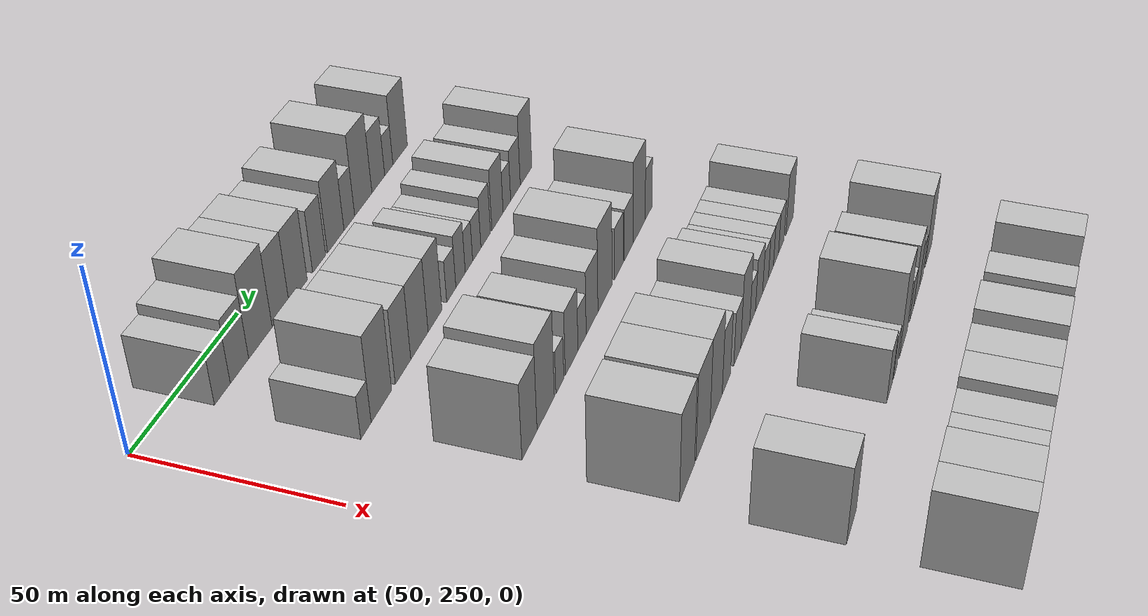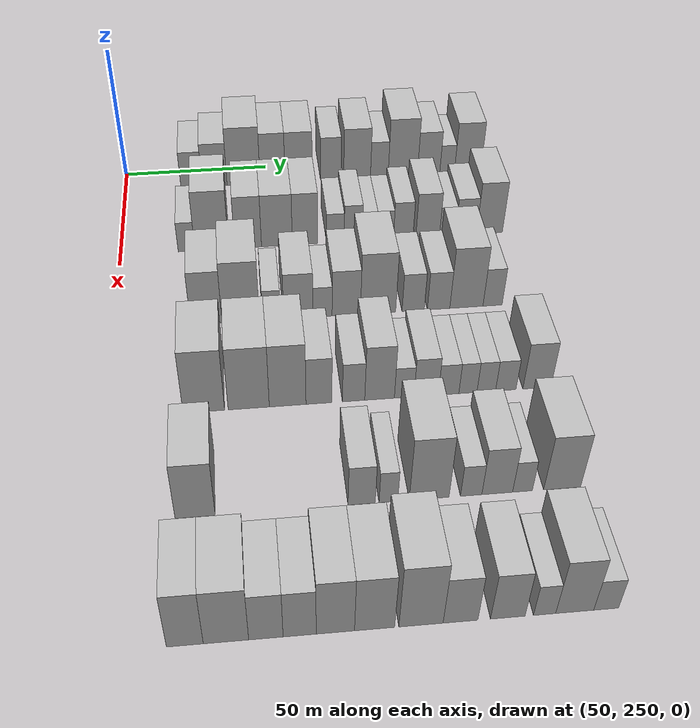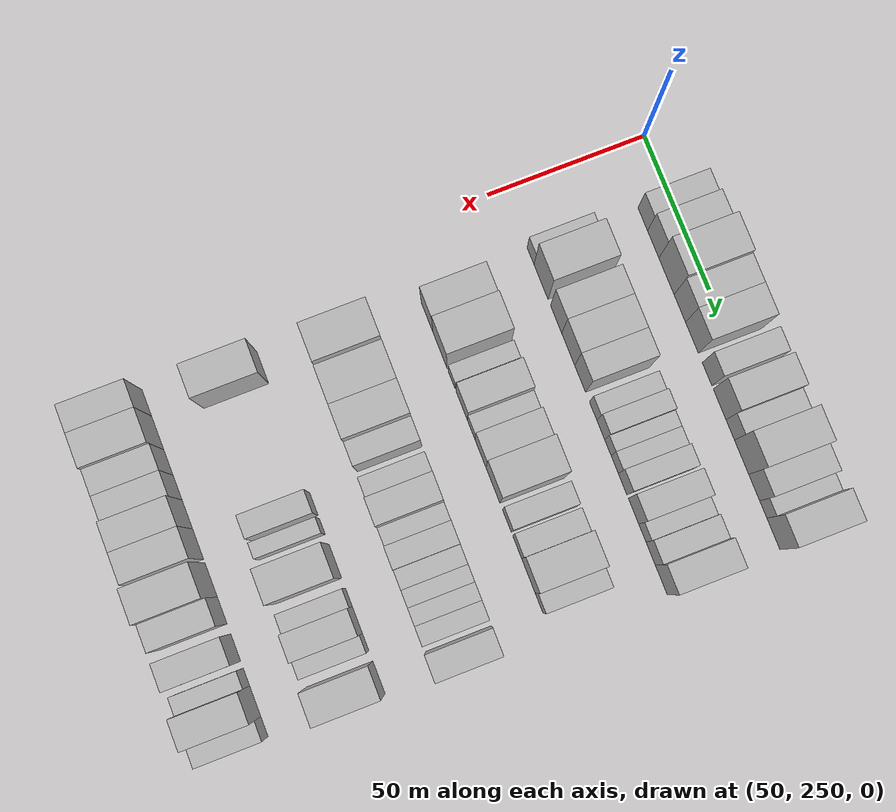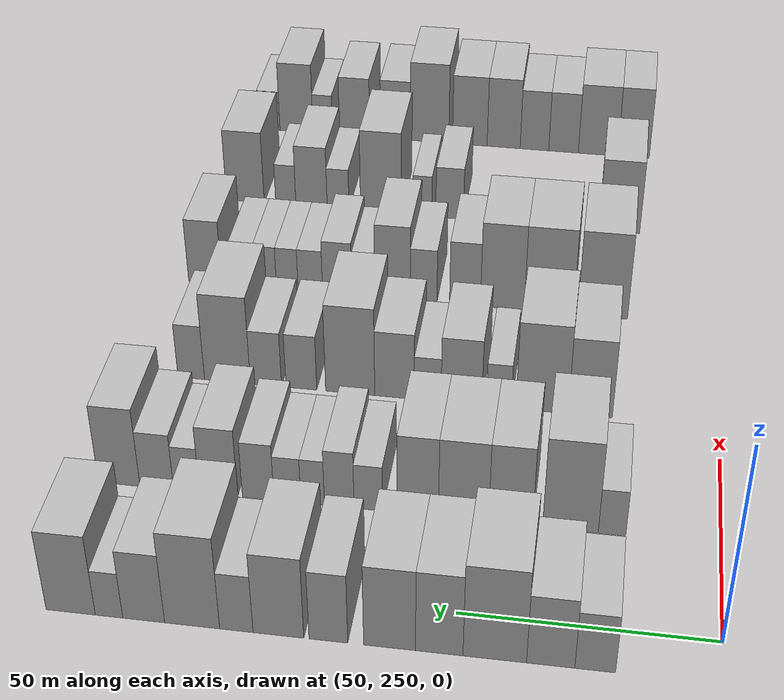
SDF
<sdf version="1.6">
 <world name="default">
  <model name="building_92">
   <static>1</static>
   <pose>50.0000 273.2604 0 0.000000 0.000000 0.000000</pose>
   <link name="link">
    <pose>0 0 7.50 0 0 0</pose>
    <collision name="collision"><geometry><box><size>20.0000 7.4517 15.0000</size></box></geometry></collision>
    <visual name="visual">
     <cast_shadows>0</cast_shadows>
     <geometry><box><size>20.0000 7.4517 15.0000</size></box></geometry>
     <material>
      <script>
       <uri>model://HANNAS_wall/materials/scripts</uri>
       <uri>model://HANNAS_wall/materials/textures</uri>
       <name>vrc/HANNAS_wall</name>
      </script>
     </material>
    </visual>
   </link>
  </model>
  <model name="building_93">
   <static>1</static>
   <pose>50.0000 281.4237 0 0.000000 0.000000 0.000000</pose>
   <link name="link">
    <pose>0 0 9.00 0 0 0</pose>
    <collision name="collision"><geometry><box><size>20.0000 8.8750 18.0000</size></box></geometry></collision>
    <visual name="visual">
     <cast_shadows>0</cast_shadows>
     <geometry><box><size>20.0000 8.8750 18.0000</size></box></geometry>
     <material>
      <script>
       <uri>model://HANNAS_wall/materials/scripts</uri>
       <uri>model://HANNAS_wall/materials/textures</uri>
       <name>vrc/HANNAS_wall</name>
      </script>
     </material>
    </visual>
   </link>
  </model>
  <model name="building_94">
   <static>1</static>
   <pose>50.0000 291.7582 0 0.000000 0.000000 0.000000</pose>
   <link name="link">
    <pose>0 0 12.00 0 0 0</pose>
    <collision name="collision"><geometry><box><size>20.0000 11.7939 24.0000</size></box></geometry></collision>
    <visual name="visual">
     <cast_shadows>0</cast_shadows>
     <geometry><box><size>20.0000 11.7939 24.0000</size></box></geometry>
     <material>
      <script>
       <uri>model://HANNAS_wall/materials/scripts</uri>
       <uri>model://HANNAS_wall/materials/textures</uri>
       <name>vrc/HANNAS_wall</name>
      </script>
     </material>
    </visual>
   </link>
  </model>
  <model name="building_95">
   <static>1</static>
   <pose>50.0000 302.0883 0 0.000000 0.000000 0.000000</pose>
   <link name="link">
    <pose>0 0 10.50 0 0 0</pose>
    <collision name="collision"><geometry><box><size>20.0000 8.8663 21.0000</size></box></geometry></collision>
    <visual name="visual">
     <cast_shadows>0</cast_shadows>
     <geometry><box><size>20.0000 8.8663 21.0000</size></box></geometry>
     <material>
      <script>
       <uri>model://HANNAS_wall/materials/scripts</uri>
       <uri>model://HANNAS_wall/materials/textures</uri>
       <name>vrc/HANNAS_wall</name>
      </script>
     </material>
    </visual>
   </link>
  </model>
  <model name="building_96">
   <static>1</static>
   <pose>50.0000 311.4001 0 0.000000 0.000000 0.000000</pose>
   <link name="link">
    <pose>0 0 10.50 0 0 0</pose>
    <collision name="collision"><geometry><box><size>20.0000 9.7573 21.0000</size></box></geometry></collision>
    <visual name="visual">
     <cast_shadows>0</cast_shadows>
     <geometry><box><size>20.0000 9.7573 21.0000</size></box></geometry>
     <material>
      <script>
       <uri>model://HANNAS_wall/materials/scripts</uri>
       <uri>model://HANNAS_wall/materials/textures</uri>
       <name>vrc/HANNAS_wall</name>
      </script>
     </material>
    </visual>
   </link>
  </model>
  <model name="building_97">
   <static>1</static>
   <pose>50.0000 322.9490 0 0.000000 0.000000 0.000000</pose>
   <link name="link">
    <pose>0 0 9.00 0 0 0</pose>
    <collision name="collision"><geometry><box><size>20.0000 7.3406 18.0000</size></box></geometry></collision>
    <visual name="visual">
     <cast_shadows>0</cast_shadows>
     <geometry><box><size>20.0000 7.3406 18.0000</size></box></geometry>
     <material>
      <script>
       <uri>model://HANNAS_wall/materials/scripts</uri>
       <uri>model://HANNAS_wall/materials/textures</uri>
       <name>vrc/HANNAS_wall</name>
      </script>
     </material>
    </visual>
   </link>
  </model>
  <model name="building_98">
   <static>1</static>
   <pose>50.0000 332.4590 0 0.000000 0.000000 0.000000</pose>
   <link name="link">
    <pose>0 0 10.50 0 0 0</pose>
    <collision name="collision"><geometry><box><size>20.0000 9.6793 21.0000</size></box></geometry></collision>
    <visual name="visual">
     <cast_shadows>0</cast_shadows>
     <geometry><box><size>20.0000 9.6793 21.0000</size></box></geometry>
     <material>
      <script>
       <uri>model://HANNAS_wall/materials/scripts</uri>
       <uri>model://HANNAS_wall/materials/textures</uri>
       <name>vrc/HANNAS_wall</name>
      </script>
     </material>
    </visual>
   </link>
  </model>
  <model name="building_99">
   <static>1</static>
   <pose>50.0000 340.4985 0 0.000000 0.000000 0.000000</pose>
   <link name="link">
    <pose>0 0 7.50 0 0 0</pose>
    <collision name="collision"><geometry><box><size>20.0000 6.3996 15.0000</size></box></geometry></collision>
    <visual name="visual">
     <cast_shadows>0</cast_shadows>
     <geometry><box><size>20.0000 6.3996 15.0000</size></box></geometry>
     <material>
      <script>
       <uri>model://HANNAS_wall/materials/scripts</uri>
       <uri>model://HANNAS_wall/materials/textures</uri>
       <name>vrc/HANNAS_wall</name>
      </script>
     </material>
    </visual>
   </link>
  </model>
  <model name="building_100">
   <static>1</static>
   <pose>50.0000 349.0227 0 0.000000 0.000000 0.000000</pose>
   <link name="link">
    <pose>0 0 12.00 0 0 0</pose>
    <collision name="collision"><geometry><box><size>20.0000 10.6489 24.0000</size></box></geometry></collision>
    <visual name="visual">
     <cast_shadows>0</cast_shadows>
     <geometry><box><size>20.0000 10.6489 24.0000</size></box></geometry>
     <material>
      <script>
       <uri>model://HANNAS_wall/materials/scripts</uri>
       <uri>model://HANNAS_wall/materials/textures</uri>
       <name>vrc/HANNAS_wall</name>
      </script>
     </material>
    </visual>
   </link>
  </model>
  <model name="building_101">
   <static>1</static>
   <pose>50.0000 358.4238 0 0.000000 0.000000 0.000000</pose>
   <link name="link">
    <pose>0 0 9.00 0 0 0</pose>
    <collision name="collision"><geometry><box><size>20.0000 8.1531 18.0000</size></box></geometry></collision>
    <visual name="visual">
     <cast_shadows>0</cast_shadows>
     <geometry><box><size>20.0000 8.1531 18.0000</size></box></geometry>
     <material>
      <script>
       <uri>model://HANNAS_wall/materials/scripts</uri>
       <uri>model://HANNAS_wall/materials/textures</uri>
       <name>vrc/HANNAS_wall</name>
      </script>
     </material>
    </visual>
   </link>
  </model>
  <model name="building_102">
   <static>1</static>
   <pose>50.0000 365.1778 0 0.000000 0.000000 0.000000</pose>
   <link name="link">
    <pose>0 0 6.00 0 0 0</pose>
    <collision name="collision"><geometry><box><size>20.0000 5.3550 12.0000</size></box></geometry></collision>
    <visual name="visual">
     <cast_shadows>0</cast_shadows>
     <geometry><box><size>20.0000 5.3550 12.0000</size></box></geometry>
     <material>
      <script>
       <uri>model://HANNAS_wall/materials/scripts</uri>
       <uri>model://HANNAS_wall/materials/textures</uri>
       <name>vrc/HANNAS_wall</name>
      </script>
     </material>
    </visual>
   </link>
  </model>
  <model name="building_103">
   <static>1</static>
   <pose>50.0000 372.6876 0 0.000000 0.000000 0.000000</pose>
   <link name="link">
    <pose>0 0 10.50 0 0 0</pose>
    <collision name="collision"><geometry><box><size>20.0000 9.6645 21.0000</size></box></geometry></collision>
    <visual name="visual">
     <cast_shadows>0</cast_shadows>
     <geometry><box><size>20.0000 9.6645 21.0000</size></box></geometry>
     <material>
      <script>
       <uri>model://HANNAS_wall/materials/scripts</uri>
       <uri>model://HANNAS_wall/materials/textures</uri>
       <name>vrc/HANNAS_wall</name>
      </script>
     </material>
    </visual>
   </link>
  </model>
  <model name="building_220">
   <static>1</static>
   <pose>85.0000 271.6506 0 0.000000 0.000000 0.000000</pose>
   <link name="link">
    <pose>0 0 6.00 0 0 0</pose>
    <collision name="collision"><geometry><box><size>20.0000 5.4878 12.0000</size></box></geometry></collision>
    <visual name="visual">
     <cast_shadows>0</cast_shadows>
     <geometry><box><size>20.0000 5.4878 12.0000</size></box></geometry>
     <material>
      <script>
       <uri>model://HANNAS_wall/materials/scripts</uri>
       <uri>model://HANNAS_wall/materials/textures</uri>
       <name>vrc/HANNAS_wall</name>
      </script>
     </material>
    </visual>
   </link>
  </model>
  <model name="building_221">
   <static>1</static>
   <pose>85.0000 279.9640 0 0.000000 0.000000 0.000000</pose>
   <link name="link">
    <pose>0 0 12.00 0 0 0</pose>
    <collision name="collision"><geometry><box><size>20.0000 11.1389 24.0000</size></box></geometry></collision>
    <visual name="visual">
     <cast_shadows>0</cast_shadows>
     <geometry><box><size>20.0000 11.1389 24.0000</size></box></geometry>
     <material>
      <script>
       <uri>model://HANNAS_wall/materials/scripts</uri>
       <uri>model://HANNAS_wall/materials/textures</uri>
       <name>vrc/HANNAS_wall</name>
      </script>
     </material>
    </visual>
   </link>
  </model>
  <model name="building_222">
   <static>1</static>
   <pose>85.0000 291.9657 0 0.000000 0.000000 0.000000</pose>
   <link name="link">
    <pose>0 0 10.50 0 0 0</pose>
    <collision name="collision"><geometry><box><size>20.0000 8.8645 21.0000</size></box></geometry></collision>
    <visual name="visual">
     <cast_shadows>0</cast_shadows>
     <geometry><box><size>20.0000 8.8645 21.0000</size></box></geometry>
     <material>
      <script>
       <uri>model://HANNAS_wall/materials/scripts</uri>
       <uri>model://HANNAS_wall/materials/textures</uri>
       <name>vrc/HANNAS_wall</name>
      </script>
     </material>
    </visual>
   </link>
  </model>
  <model name="building_223">
   <static>1</static>
   <pose>85.0000 301.5116 0 0.000000 0.000000 0.000000</pose>
   <link name="link">
    <pose>0 0 10.50 0 0 0</pose>
    <collision name="collision"><geometry><box><size>20.0000 10.2274 21.0000</size></box></geometry></collision>
    <visual name="visual">
     <cast_shadows>0</cast_shadows>
     <geometry><box><size>20.0000 10.2274 21.0000</size></box></geometry>
     <material>
      <script>
       <uri>model://HANNAS_wall/materials/scripts</uri>
       <uri>model://HANNAS_wall/materials/textures</uri>
       <name>vrc/HANNAS_wall</name>
      </script>
     </material>
    </visual>
   </link>
  </model>
  <model name="building_224">
   <static>1</static>
   <pose>85.0000 310.8519 0 0.000000 0.000000 0.000000</pose>
   <link name="link">
    <pose>0 0 10.50 0 0 0</pose>
    <collision name="collision"><geometry><box><size>20.0000 8.4534 21.0000</size></box></geometry></collision>
    <visual name="visual">
     <cast_shadows>0</cast_shadows>
     <geometry><box><size>20.0000 8.4534 21.0000</size></box></geometry>
     <material>
      <script>
       <uri>model://HANNAS_wall/materials/scripts</uri>
       <uri>model://HANNAS_wall/materials/textures</uri>
       <name>vrc/HANNAS_wall</name>
      </script>
     </material>
    </visual>
   </link>
  </model>
  <model name="building_225">
   <static>1</static>
   <pose>85.0000 321.0040 0 0.000000 0.000000 0.000000</pose>
   <link name="link">
    <pose>0 0 6.00 0 0 0</pose>
    <collision name="collision"><geometry><box><size>20.0000 5.8507 12.0000</size></box></geometry></collision>
    <visual name="visual">
     <cast_shadows>0</cast_shadows>
     <geometry><box><size>20.0000 5.8507 12.0000</size></box></geometry>
     <material>
      <script>
       <uri>model://HANNAS_wall/materials/scripts</uri>
       <uri>model://HANNAS_wall/materials/textures</uri>
       <name>vrc/HANNAS_wall</name>
      </script>
     </material>
    </visual>
   </link>
  </model>
  <model name="building_226">
   <static>1</static>
   <pose>85.0000 326.9849 0 0.000000 0.000000 0.000000</pose>
   <link name="link">
    <pose>0 0 7.50 0 0 0</pose>
    <collision name="collision"><geometry><box><size>20.0000 6.1111 15.0000</size></box></geometry></collision>
    <visual name="visual">
     <cast_shadows>0</cast_shadows>
     <geometry><box><size>20.0000 6.1111 15.0000</size></box></geometry>
     <material>
      <script>
       <uri>model://HANNAS_wall/materials/scripts</uri>
       <uri>model://HANNAS_wall/materials/textures</uri>
       <name>vrc/HANNAS_wall</name>
      </script>
     </material>
    </visual>
   </link>
  </model>
  <model name="building_227">
   <static>1</static>
   <pose>85.0000 332.4882 0 0.000000 0.000000 0.000000</pose>
   <link name="link">
    <pose>0 0 6.00 0 0 0</pose>
    <collision name="collision"><geometry><box><size>20.0000 4.8956 12.0000</size></box></geometry></collision>
    <visual name="visual">
     <cast_shadows>0</cast_shadows>
     <geometry><box><size>20.0000 4.8956 12.0000</size></box></geometry>
     <material>
      <script>
       <uri>model://HANNAS_wall/materials/scripts</uri>
       <uri>model://HANNAS_wall/materials/textures</uri>
       <name>vrc/HANNAS_wall</name>
      </script>
     </material>
    </visual>
   </link>
  </model>
  <model name="building_228">
   <static>1</static>
   <pose>85.0000 337.7297 0 0.000000 0.000000 0.000000</pose>
   <link name="link">
    <pose>0 0 6.00 0 0 0</pose>
    <collision name="collision"><geometry><box><size>20.0000 5.5874 12.0000</size></box></geometry></collision>
    <visual name="visual">
     <cast_shadows>0</cast_shadows>
     <geometry><box><size>20.0000 5.5874 12.0000</size></box></geometry>
     <material>
      <script>
       <uri>model://HANNAS_wall/materials/scripts</uri>
       <uri>model://HANNAS_wall/materials/textures</uri>
       <name>vrc/HANNAS_wall</name>
      </script>
     </material>
    </visual>
   </link>
  </model>
  <model name="building_229">
   <static>1</static>
   <pose>85.0000 343.8152 0 0.000000 0.000000 0.000000</pose>
   <link name="link">
    <pose>0 0 7.50 0 0 0</pose>
    <collision name="collision"><geometry><box><size>20.0000 6.5835 15.0000</size></box></geometry></collision>
    <visual name="visual">
     <cast_shadows>0</cast_shadows>
     <geometry><box><size>20.0000 6.5835 15.0000</size></box></geometry>
     <material>
      <script>
       <uri>model://HANNAS_wall/materials/scripts</uri>
       <uri>model://HANNAS_wall/materials/textures</uri>
       <name>vrc/HANNAS_wall</name>
      </script>
     </material>
    </visual>
   </link>
  </model>
  <model name="building_230">
   <static>1</static>
   <pose>85.0000 352.1114 0 0.000000 0.000000 0.000000</pose>
   <link name="link">
    <pose>0 0 9.00 0 0 0</pose>
    <collision name="collision"><geometry><box><size>20.0000 8.0090 18.0000</size></box></geometry></collision>
    <visual name="visual">
     <cast_shadows>0</cast_shadows>
     <geometry><box><size>20.0000 8.0090 18.0000</size></box></geometry>
     <material>
      <script>
       <uri>model://HANNAS_wall/materials/scripts</uri>
       <uri>model://HANNAS_wall/materials/textures</uri>
       <name>vrc/HANNAS_wall</name>
      </script>
     </material>
    </visual>
   </link>
  </model>
  <model name="building_231">
   <static>1</static>
   <pose>85.0000 358.8548 0 0.000000 0.000000 0.000000</pose>
   <link name="link">
    <pose>0 0 6.00 0 0 0</pose>
    <collision name="collision"><geometry><box><size>20.0000 5.4777 12.0000</size></box></geometry></collision>
    <visual name="visual">
     <cast_shadows>0</cast_shadows>
     <geometry><box><size>20.0000 5.4777 12.0000</size></box></geometry>
     <material>
      <script>
       <uri>model://HANNAS_wall/materials/scripts</uri>
       <uri>model://HANNAS_wall/materials/textures</uri>
       <name>vrc/HANNAS_wall</name>
      </script>
     </material>
    </visual>
   </link>
  </model>
  <model name="building_232">
   <static>1</static>
   <pose>85.0000 365.1560 0 0.000000 0.000000 0.000000</pose>
   <link name="link">
    <pose>0 0 7.50 0 0 0</pose>
    <collision name="collision"><geometry><box><size>20.0000 7.1248 15.0000</size></box></geometry></collision>
    <visual name="visual">
     <cast_shadows>0</cast_shadows>
     <geometry><box><size>20.0000 7.1248 15.0000</size></box></geometry>
     <material>
      <script>
       <uri>model://HANNAS_wall/materials/scripts</uri>
       <uri>model://HANNAS_wall/materials/textures</uri>
       <name>vrc/HANNAS_wall</name>
      </script>
     </material>
    </visual>
   </link>
  </model>
  <model name="building_233">
   <static>1</static>
   <pose>85.0000 373.1471 0 0.000000 0.000000 0.000000</pose>
   <link name="link">
    <pose>0 0 10.50 0 0 0</pose>
    <collision name="collision"><geometry><box><size>20.0000 8.8573 21.0000</size></box></geometry></collision>
    <visual name="visual">
     <cast_shadows>0</cast_shadows>
     <geometry><box><size>20.0000 8.8573 21.0000</size></box></geometry>
     <material>
      <script>
       <uri>model://HANNAS_wall/materials/scripts</uri>
       <uri>model://HANNAS_wall/materials/textures</uri>
       <name>vrc/HANNAS_wall</name>
      </script>
     </material>
    </visual>
   </link>
  </model>
  <model name="building_345">
   <static>1</static>
   <pose>120.0000 277.8243 0 0.000000 0.000000 0.000000</pose>
   <link name="link">
    <pose>0 0 10.50 0 0 0</pose>
    <collision name="collision"><geometry><box><size>20.0000 9.5496 21.0000</size></box></geometry></collision>
    <visual name="visual">
     <cast_shadows>0</cast_shadows>
     <geometry><box><size>20.0000 9.5496 21.0000</size></box></geometry>
     <material>
      <script>
       <uri>model://HANNAS_wall/materials/scripts</uri>
       <uri>model://HANNAS_wall/materials/textures</uri>
       <name>vrc/HANNAS_wall</name>
      </script>
     </material>
    </visual>
   </link>
  </model>
  <model name="building_346">
   <static>1</static>
   <pose>120.0000 288.3010 0 0.000000 0.000000 0.000000</pose>
   <link name="link">
    <pose>0 0 12.00 0 0 0</pose>
    <collision name="collision"><geometry><box><size>20.0000 11.4037 24.0000</size></box></geometry></collision>
    <visual name="visual">
     <cast_shadows>0</cast_shadows>
     <geometry><box><size>20.0000 11.4037 24.0000</size></box></geometry>
     <material>
      <script>
       <uri>model://HANNAS_wall/materials/scripts</uri>
       <uri>model://HANNAS_wall/materials/textures</uri>
       <name>vrc/HANNAS_wall</name>
      </script>
     </material>
    </visual>
   </link>
  </model>
  <model name="building_347">
   <static>1</static>
   <pose>120.0000 297.7228 0 0.000000 0.000000 0.000000</pose>
   <link name="link">
    <pose>0 0 6.00 0 0 0</pose>
    <collision name="collision"><geometry><box><size>20.0000 5.4399 12.0000</size></box></geometry></collision>
    <visual name="visual">
     <cast_shadows>0</cast_shadows>
     <geometry><box><size>20.0000 5.4399 12.0000</size></box></geometry>
     <material>
      <script>
       <uri>model://HANNAS_wall/materials/scripts</uri>
       <uri>model://HANNAS_wall/materials/textures</uri>
       <name>vrc/HANNAS_wall</name>
      </script>
     </material>
    </visual>
   </link>
  </model>
  <model name="building_348">
   <static>1</static>
   <pose>120.0000 305.9290 0 0.000000 0.000000 0.000000</pose>
   <link name="link">
    <pose>0 0 9.00 0 0 0</pose>
    <collision name="collision"><geometry><box><size>20.0000 8.9726 18.0000</size></box></geometry></collision>
    <visual name="visual">
     <cast_shadows>0</cast_shadows>
     <geometry><box><size>20.0000 8.9726 18.0000</size></box></geometry>
     <material>
      <script>
       <uri>model://HANNAS_wall/materials/scripts</uri>
       <uri>model://HANNAS_wall/materials/textures</uri>
       <name>vrc/HANNAS_wall</name>
      </script>
     </material>
    </visual>
   </link>
  </model>
  <model name="building_349">
   <static>1</static>
   <pose>120.0000 313.3899 0 0.000000 0.000000 0.000000</pose>
   <link name="link">
    <pose>0 0 6.00 0 0 0</pose>
    <collision name="collision"><geometry><box><size>20.0000 5.9491 12.0000</size></box></geometry></collision>
    <visual name="visual">
     <cast_shadows>0</cast_shadows>
     <geometry><box><size>20.0000 5.9491 12.0000</size></box></geometry>
     <material>
      <script>
       <uri>model://HANNAS_wall/materials/scripts</uri>
       <uri>model://HANNAS_wall/materials/textures</uri>
       <name>vrc/HANNAS_wall</name>
      </script>
     </material>
    </visual>
   </link>
  </model>
  <model name="building_350">
   <static>1</static>
   <pose>120.0000 320.7537 0 0.000000 0.000000 0.000000</pose>
   <link name="link">
    <pose>0 0 9.00 0 0 0</pose>
    <collision name="collision"><geometry><box><size>20.0000 8.7784 18.0000</size></box></geometry></collision>
    <visual name="visual">
     <cast_shadows>0</cast_shadows>
     <geometry><box><size>20.0000 8.7784 18.0000</size></box></geometry>
     <material>
      <script>
       <uri>model://HANNAS_wall/materials/scripts</uri>
       <uri>model://HANNAS_wall/materials/textures</uri>
       <name>vrc/HANNAS_wall</name>
      </script>
     </material>
    </visual>
   </link>
  </model>
  <model name="building_351">
   <static>1</static>
   <pose>120.0000 330.6243 0 0.000000 0.000000 0.000000</pose>
   <link name="link">
    <pose>0 0 12.00 0 0 0</pose>
    <collision name="collision"><geometry><box><size>20.0000 10.9628 24.0000</size></box></geometry></collision>
    <visual name="visual">
     <cast_shadows>0</cast_shadows>
     <geometry><box><size>20.0000 10.9628 24.0000</size></box></geometry>
     <material>
      <script>
       <uri>model://HANNAS_wall/materials/scripts</uri>
       <uri>model://HANNAS_wall/materials/textures</uri>
       <name>vrc/HANNAS_wall</name>
      </script>
     </material>
    </visual>
   </link>
  </model>
  <model name="building_352">
   <static>1</static>
   <pose>120.0000 341.5676 0 0.000000 0.000000 0.000000</pose>
   <link name="link">
    <pose>0 0 7.50 0 0 0</pose>
    <collision name="collision"><geometry><box><size>20.0000 6.9238 15.0000</size></box></geometry></collision>
    <visual name="visual">
     <cast_shadows>0</cast_shadows>
     <geometry><box><size>20.0000 6.9238 15.0000</size></box></geometry>
     <material>
      <script>
       <uri>model://HANNAS_wall/materials/scripts</uri>
       <uri>model://HANNAS_wall/materials/textures</uri>
       <name>vrc/HANNAS_wall</name>
      </script>
     </material>
    </visual>
   </link>
  </model>
  <model name="building_353">
   <static>1</static>
   <pose>120.0000 349.5523 0 0.000000 0.000000 0.000000</pose>
   <link name="link">
    <pose>0 0 7.50 0 0 0</pose>
    <collision name="collision"><geometry><box><size>20.0000 7.0457 15.0000</size></box></geometry></collision>
    <visual name="visual">
     <cast_shadows>0</cast_shadows>
     <geometry><box><size>20.0000 7.0457 15.0000</size></box></geometry>
     <material>
      <script>
       <uri>model://HANNAS_wall/materials/scripts</uri>
       <uri>model://HANNAS_wall/materials/textures</uri>
       <name>vrc/HANNAS_wall</name>
      </script>
     </material>
    </visual>
   </link>
  </model>
  <model name="building_354">
   <static>1</static>
   <pose>120.0000 358.2952 0 0.000000 0.000000 0.000000</pose>
   <link name="link">
    <pose>0 0 12.00 0 0 0</pose>
    <collision name="collision"><geometry><box><size>20.0000 10.4401 24.0000</size></box></geometry></collision>
    <visual name="visual">
     <cast_shadows>0</cast_shadows>
     <geometry><box><size>20.0000 10.4401 24.0000</size></box></geometry>
     <material>
      <script>
       <uri>model://HANNAS_wall/materials/scripts</uri>
       <uri>model://HANNAS_wall/materials/textures</uri>
       <name>vrc/HANNAS_wall</name>
      </script>
     </material>
    </visual>
   </link>
  </model>
  <model name="building_355">
   <static>1</static>
   <pose>120.0000 366.5437 0 0.000000 0.000000 0.000000</pose>
   <link name="link">
    <pose>0 0 7.50 0 0 0</pose>
    <collision name="collision"><geometry><box><size>20.0000 6.0568 15.0000</size></box></geometry></collision>
    <visual name="visual">
     <cast_shadows>0</cast_shadows>
     <geometry><box><size>20.0000 6.0568 15.0000</size></box></geometry>
     <material>
      <script>
       <uri>model://HANNAS_wall/materials/scripts</uri>
       <uri>model://HANNAS_wall/materials/textures</uri>
       <name>vrc/HANNAS_wall</name>
      </script>
     </material>
    </visual>
   </link>
  </model>
  <model name="building_475">
   <static>1</static>
   <pose>155.0000 276.7637 0 0.000000 0.000000 0.000000</pose>
   <link name="link">
    <pose>0 0 12.00 0 0 0</pose>
    <collision name="collision"><geometry><box><size>20.0000 11.5794 24.0000</size></box></geometry></collision>
    <visual name="visual">
     <cast_shadows>0</cast_shadows>
     <geometry><box><size>20.0000 11.5794 24.0000</size></box></geometry>
     <material>
      <script>
       <uri>model://HANNAS_wall/materials/scripts</uri>
       <uri>model://HANNAS_wall/materials/textures</uri>
       <name>vrc/HANNAS_wall</name>
      </script>
     </material>
    </visual>
   </link>
  </model>
  <model name="building_476">
   <static>1</static>
   <pose>155.0000 289.3273 0 0.000000 0.000000 0.000000</pose>
   <link name="link">
    <pose>0 0 12.00 0 0 0</pose>
    <collision name="collision"><geometry><box><size>20.0000 11.5478 24.0000</size></box></geometry></collision>
    <visual name="visual">
     <cast_shadows>0</cast_shadows>
     <geometry><box><size>20.0000 11.5478 24.0000</size></box></geometry>
     <material>
      <script>
       <uri>model://HANNAS_wall/materials/scripts</uri>
       <uri>model://HANNAS_wall/materials/textures</uri>
       <name>vrc/HANNAS_wall</name>
      </script>
     </material>
    </visual>
   </link>
  </model>
  <model name="building_477">
   <static>1</static>
   <pose>155.0000 300.2707 0 0.000000 0.000000 0.000000</pose>
   <link name="link">
    <pose>0 0 12.00 0 0 0</pose>
    <collision name="collision"><geometry><box><size>20.0000 10.3389 24.0000</size></box></geometry></collision>
    <visual name="visual">
     <cast_shadows>0</cast_shadows>
     <geometry><box><size>20.0000 10.3389 24.0000</size></box></geometry>
     <material>
      <script>
       <uri>model://HANNAS_wall/materials/scripts</uri>
       <uri>model://HANNAS_wall/materials/textures</uri>
       <name>vrc/HANNAS_wall</name>
      </script>
     </material>
    </visual>
   </link>
  </model>
  <model name="building_478">
   <static>1</static>
   <pose>155.0000 309.0993 0 0.000000 0.000000 0.000000</pose>
   <link name="link">
    <pose>0 0 9.00 0 0 0</pose>
    <collision name="collision"><geometry><box><size>20.0000 7.3184 18.0000</size></box></geometry></collision>
    <visual name="visual">
     <cast_shadows>0</cast_shadows>
     <geometry><box><size>20.0000 7.3184 18.0000</size></box></geometry>
     <material>
      <script>
       <uri>model://HANNAS_wall/materials/scripts</uri>
       <uri>model://HANNAS_wall/materials/textures</uri>
       <name>vrc/HANNAS_wall</name>
      </script>
     </material>
    </visual>
   </link>
  </model>
  <model name="building_479">
   <static>1</static>
   <pose>155.0000 318.9357 0 0.000000 0.000000 0.000000</pose>
   <link name="link">
    <pose>0 0 7.50 0 0 0</pose>
    <collision name="collision"><geometry><box><size>20.0000 6.3544 15.0000</size></box></geometry></collision>
    <visual name="visual">
     <cast_shadows>0</cast_shadows>
     <geometry><box><size>20.0000 6.3544 15.0000</size></box></geometry>
     <material>
      <script>
       <uri>model://HANNAS_wall/materials/scripts</uri>
       <uri>model://HANNAS_wall/materials/textures</uri>
       <name>vrc/HANNAS_wall</name>
      </script>
     </material>
    </visual>
   </link>
  </model>
  <model name="building_480">
   <static>1</static>
   <pose>155.0000 326.3472 0 0.000000 0.000000 0.000000</pose>
   <link name="link">
    <pose>0 0 10.50 0 0 0</pose>
    <collision name="collision"><geometry><box><size>20.0000 8.4686 21.0000</size></box></geometry></collision>
    <visual name="visual">
     <cast_shadows>0</cast_shadows>
     <geometry><box><size>20.0000 8.4686 21.0000</size></box></geometry>
     <material>
      <script>
       <uri>model://HANNAS_wall/materials/scripts</uri>
       <uri>model://HANNAS_wall/materials/textures</uri>
       <name>vrc/HANNAS_wall</name>
      </script>
     </material>
    </visual>
   </link>
  </model>
  <model name="building_481">
   <static>1</static>
   <pose>155.0000 333.3718 0 0.000000 0.000000 0.000000</pose>
   <link name="link">
    <pose>0 0 6.00 0 0 0</pose>
    <collision name="collision"><geometry><box><size>20.0000 5.5806 12.0000</size></box></geometry></collision>
    <visual name="visual">
     <cast_shadows>0</cast_shadows>
     <geometry><box><size>20.0000 5.5806 12.0000</size></box></geometry>
     <material>
      <script>
       <uri>model://HANNAS_wall/materials/scripts</uri>
       <uri>model://HANNAS_wall/materials/textures</uri>
       <name>vrc/HANNAS_wall</name>
      </script>
     </material>
    </visual>
   </link>
  </model>
  <model name="building_482">
   <static>1</static>
   <pose>155.0000 339.6754 0 0.000000 0.000000 0.000000</pose>
   <link name="link">
    <pose>0 0 7.50 0 0 0</pose>
    <collision name="collision"><geometry><box><size>20.0000 7.0265 15.0000</size></box></geometry></collision>
    <visual name="visual">
     <cast_shadows>0</cast_shadows>
     <geometry><box><size>20.0000 7.0265 15.0000</size></box></geometry>
     <material>
      <script>
       <uri>model://HANNAS_wall/materials/scripts</uri>
       <uri>model://HANNAS_wall/materials/textures</uri>
       <name>vrc/HANNAS_wall</name>
      </script>
     </material>
    </visual>
   </link>
  </model>
  <model name="building_483">
   <static>1</static>
   <pose>155.0000 346.1488 0 0.000000 0.000000 0.000000</pose>
   <link name="link">
    <pose>0 0 6.00 0 0 0</pose>
    <collision name="collision"><geometry><box><size>20.0000 5.9203 12.0000</size></box></geometry></collision>
    <visual name="visual">
     <cast_shadows>0</cast_shadows>
     <geometry><box><size>20.0000 5.9203 12.0000</size></box></geometry>
     <material>
      <script>
       <uri>model://HANNAS_wall/materials/scripts</uri>
       <uri>model://HANNAS_wall/materials/textures</uri>
       <name>vrc/HANNAS_wall</name>
      </script>
     </material>
    </visual>
   </link>
  </model>
  <model name="building_484">
   <static>1</static>
   <pose>155.0000 351.7278 0 0.000000 0.000000 0.000000</pose>
   <link name="link">
    <pose>0 0 6.00 0 0 0</pose>
    <collision name="collision"><geometry><box><size>20.0000 5.2377 12.0000</size></box></geometry></collision>
    <visual name="visual">
     <cast_shadows>0</cast_shadows>
     <geometry><box><size>20.0000 5.2377 12.0000</size></box></geometry>
     <material>
      <script>
       <uri>model://HANNAS_wall/materials/scripts</uri>
       <uri>model://HANNAS_wall/materials/textures</uri>
       <name>vrc/HANNAS_wall</name>
      </script>
     </material>
    </visual>
   </link>
  </model>
  <model name="building_485">
   <static>1</static>
   <pose>155.0000 357.0412 0 0.000000 0.000000 0.000000</pose>
   <link name="link">
    <pose>0 0 6.00 0 0 0</pose>
    <collision name="collision"><geometry><box><size>20.0000 5.3890 12.0000</size></box></geometry></collision>
    <visual name="visual">
     <cast_shadows>0</cast_shadows>
     <geometry><box><size>20.0000 5.3890 12.0000</size></box></geometry>
     <material>
      <script>
       <uri>model://HANNAS_wall/materials/scripts</uri>
       <uri>model://HANNAS_wall/materials/textures</uri>
       <name>vrc/HANNAS_wall</name>
      </script>
     </material>
    </visual>
   </link>
  </model>
  <model name="building_486">
   <static>1</static>
   <pose>155.0000 362.7035 0 0.000000 0.000000 0.000000</pose>
   <link name="link">
    <pose>0 0 6.00 0 0 0</pose>
    <collision name="collision"><geometry><box><size>20.0000 5.9356 12.0000</size></box></geometry></collision>
    <visual name="visual">
     <cast_shadows>0</cast_shadows>
     <geometry><box><size>20.0000 5.9356 12.0000</size></box></geometry>
     <material>
      <script>
       <uri>model://HANNAS_wall/materials/scripts</uri>
       <uri>model://HANNAS_wall/materials/textures</uri>
       <name>vrc/HANNAS_wall</name>
      </script>
     </material>
    </visual>
   </link>
  </model>
  <model name="building_487">
   <static>1</static>
   <pose>155.0000 371.7610 0 0.000000 0.000000 0.000000</pose>
   <link name="link">
    <pose>0 0 9.00 0 0 0</pose>
    <collision name="collision"><geometry><box><size>20.0000 8.1795 18.0000</size></box></geometry></collision>
    <visual name="visual">
     <cast_shadows>0</cast_shadows>
     <geometry><box><size>20.0000 8.1795 18.0000</size></box></geometry>
     <material>
      <script>
       <uri>model://HANNAS_wall/materials/scripts</uri>
       <uri>model://HANNAS_wall/materials/textures</uri>
       <name>vrc/HANNAS_wall</name>
      </script>
     </material>
    </visual>
   </link>
  </model>
  <model name="building_609">
   <static>1</static>
   <pose>190.0000 274.2621 0 0.000000 0.000000 0.000000</pose>
   <link name="link">
    <pose>0 0 10.50 0 0 0</pose>
    <collision name="collision"><geometry><box><size>20.0000 10.1899 21.0000</size></box></geometry></collision>
    <visual name="visual">
     <cast_shadows>0</cast_shadows>
     <geometry><box><size>20.0000 10.1899 21.0000</size></box></geometry>
     <material>
      <script>
       <uri>model://HANNAS_wall/materials/scripts</uri>
       <uri>model://HANNAS_wall/materials/textures</uri>
       <name>vrc/HANNAS_wall</name>
      </script>
     </material>
    </visual>
   </link>
  </model>
  <model name="building_610">
   <static>1</static>
   <pose>190.0000 316.9405 0 0.000000 0.000000 0.000000</pose>
   <link name="link">
    <pose>0 0 7.50 0 0 0</pose>
    <collision name="collision"><geometry><box><size>20.0000 7.0556 15.0000</size></box></geometry></collision>
    <visual name="visual">
     <cast_shadows>0</cast_shadows>
     <geometry><box><size>20.0000 7.0556 15.0000</size></box></geometry>
     <material>
      <script>
       <uri>model://HANNAS_wall/materials/scripts</uri>
       <uri>model://HANNAS_wall/materials/textures</uri>
       <name>vrc/HANNAS_wall</name>
      </script>
     </material>
    </visual>
   </link>
  </model>
  <model name="building_611">
   <static>1</static>
   <pose>190.0000 323.8952 0 0.000000 0.000000 0.000000</pose>
   <link name="link">
    <pose>0 0 6.00 0 0 0</pose>
    <collision name="collision"><geometry><box><size>20.0000 4.8536 12.0000</size></box></geometry></collision>
    <visual name="visual">
     <cast_shadows>0</cast_shadows>
     <geometry><box><size>20.0000 4.8536 12.0000</size></box></geometry>
     <material>
      <script>
       <uri>model://HANNAS_wall/materials/scripts</uri>
       <uri>model://HANNAS_wall/materials/textures</uri>
       <name>vrc/HANNAS_wall</name>
      </script>
     </material>
    </visual>
   </link>
  </model>
  <model name="building_612">
   <static>1</static>
   <pose>190.0000 334.5303 0 0.000000 0.000000 0.000000</pose>
   <link name="link">
    <pose>0 0 12.00 0 0 0</pose>
    <collision name="collision"><geometry><box><size>20.0000 10.4165 24.0000</size></box></geometry></collision>
    <visual name="visual">
     <cast_shadows>0</cast_shadows>
     <geometry><box><size>20.0000 10.4165 24.0000</size></box></geometry>
     <material>
      <script>
       <uri>model://HANNAS_wall/materials/scripts</uri>
       <uri>model://HANNAS_wall/materials/textures</uri>
       <name>vrc/HANNAS_wall</name>
      </script>
     </material>
    </visual>
   </link>
  </model>
  <model name="building_613">
   <static>1</static>
   <pose>190.0000 345.5502 0 0.000000 0.000000 0.000000</pose>
   <link name="link">
    <pose>0 0 6.00 0 0 0</pose>
    <collision name="collision"><geometry><box><size>20.0000 5.6234 12.0000</size></box></geometry></collision>
    <visual name="visual">
     <cast_shadows>0</cast_shadows>
     <geometry><box><size>20.0000 5.6234 12.0000</size></box></geometry>
     <material>
      <script>
       <uri>model://HANNAS_wall/materials/scripts</uri>
       <uri>model://HANNAS_wall/materials/textures</uri>
       <name>vrc/HANNAS_wall</name>
      </script>
     </material>
    </visual>
   </link>
  </model>
  <model name="building_614">
   <static>1</static>
   <pose>190.0000 352.4194 0 0.000000 0.000000 0.000000</pose>
   <link name="link">
    <pose>0 0 9.00 0 0 0</pose>
    <collision name="collision"><geometry><box><size>20.0000 8.1149 18.0000</size></box></geometry></collision>
    <visual name="visual">
     <cast_shadows>0</cast_shadows>
     <geometry><box><size>20.0000 8.1149 18.0000</size></box></geometry>
     <material>
      <script>
       <uri>model://HANNAS_wall/materials/scripts</uri>
       <uri>model://HANNAS_wall/materials/textures</uri>
       <name>vrc/HANNAS_wall</name>
      </script>
     </material>
    </visual>
   </link>
  </model>
  <model name="building_615">
   <static>1</static>
   <pose>190.0000 359.0988 0 0.000000 0.000000 0.000000</pose>
   <link name="link">
    <pose>0 0 6.00 0 0 0</pose>
    <collision name="collision"><geometry><box><size>20.0000 5.2438 12.0000</size></box></geometry></collision>
    <visual name="visual">
     <cast_shadows>0</cast_shadows>
     <geometry><box><size>20.0000 5.2438 12.0000</size></box></geometry>
     <material>
      <script>
       <uri>model://HANNAS_wall/materials/scripts</uri>
       <uri>model://HANNAS_wall/materials/textures</uri>
       <name>vrc/HANNAS_wall</name>
      </script>
     </material>
    </visual>
   </link>
  </model>
  <model name="building_616">
   <static>1</static>
   <pose>190.0000 369.6438 0 0.000000 0.000000 0.000000</pose>
   <link name="link">
    <pose>0 0 10.50 0 0 0</pose>
    <collision name="collision"><geometry><box><size>20.0000 9.8463 21.0000</size></box></geometry></collision>
    <visual name="visual">
     <cast_shadows>0</cast_shadows>
     <geometry><box><size>20.0000 9.8463 21.0000</size></box></geometry>
     <material>
      <script>
       <uri>model://HANNAS_wall/materials/scripts</uri>
       <uri>model://HANNAS_wall/materials/textures</uri>
       <name>vrc/HANNAS_wall</name>
      </script>
     </material>
    </visual>
   </link>
  </model>
  <model name="building_735">
   <static>1</static>
   <pose>225.0000 271.8458 0 0.000000 0.000000 0.000000</pose>
   <link name="link">
    <pose>0 0 10.50 0 0 0</pose>
    <collision name="collision"><geometry><box><size>20.0000 8.4118 21.0000</size></box></geometry></collision>
    <visual name="visual">
     <cast_shadows>0</cast_shadows>
     <geometry><box><size>20.0000 8.4118 21.0000</size></box></geometry>
     <material>
      <script>
       <uri>model://HANNAS_wall/materials/scripts</uri>
       <uri>model://HANNAS_wall/materials/textures</uri>
       <name>vrc/HANNAS_wall</name>
      </script>
     </material>
    </visual>
   </link>
  </model>
  <model name="building_736">
   <static>1</static>
   <pose>225.0000 281.2587 0 0.000000 0.000000 0.000000</pose>
   <link name="link">
    <pose>0 0 10.50 0 0 0</pose>
    <collision name="collision"><geometry><box><size>20.0000 10.4140 21.0000</size></box></geometry></collision>
    <visual name="visual">
     <cast_shadows>0</cast_shadows>
     <geometry><box><size>20.0000 10.4140 21.0000</size></box></geometry>
     <material>
      <script>
       <uri>model://HANNAS_wall/materials/scripts</uri>
       <uri>model://HANNAS_wall/materials/textures</uri>
       <name>vrc/HANNAS_wall</name>
      </script>
     </material>
    </visual>
   </link>
  </model>
  <model name="building_737">
   <static>1</static>
   <pose>225.0000 290.4334 0 0.000000 0.000000 0.000000</pose>
   <link name="link">
    <pose>0 0 9.00 0 0 0</pose>
    <collision name="collision"><geometry><box><size>20.0000 7.9354 18.0000</size></box></geometry></collision>
    <visual name="visual">
     <cast_shadows>0</cast_shadows>
     <geometry><box><size>20.0000 7.9354 18.0000</size></box></geometry>
     <material>
      <script>
       <uri>model://HANNAS_wall/materials/scripts</uri>
       <uri>model://HANNAS_wall/materials/textures</uri>
       <name>vrc/HANNAS_wall</name>
      </script>
     </material>
    </visual>
   </link>
  </model>
  <model name="building_738">
   <static>1</static>
   <pose>225.0000 298.2308 0 0.000000 0.000000 0.000000</pose>
   <link name="link">
    <pose>0 0 9.00 0 0 0</pose>
    <collision name="collision"><geometry><box><size>20.0000 7.6594 18.0000</size></box></geometry></collision>
    <visual name="visual">
     <cast_shadows>0</cast_shadows>
     <geometry><box><size>20.0000 7.6594 18.0000</size></box></geometry>
     <material>
      <script>
       <uri>model://HANNAS_wall/materials/scripts</uri>
       <uri>model://HANNAS_wall/materials/textures</uri>
       <name>vrc/HANNAS_wall</name>
      </script>
     </material>
    </visual>
   </link>
  </model>
  <model name="building_739">
   <static>1</static>
   <pose>225.0000 306.5226 0 0.000000 0.000000 0.000000</pose>
   <link name="link">
    <pose>0 0 10.50 0 0 0</pose>
    <collision name="collision"><geometry><box><size>20.0000 8.9242 21.0000</size></box></geometry></collision>
    <visual name="visual">
     <cast_shadows>0</cast_shadows>
     <geometry><box><size>20.0000 8.9242 21.0000</size></box></geometry>
     <material>
      <script>
       <uri>model://HANNAS_wall/materials/scripts</uri>
       <uri>model://HANNAS_wall/materials/textures</uri>
       <name>vrc/HANNAS_wall</name>
      </script>
     </material>
    </visual>
   </link>
  </model>
  <model name="building_740">
   <static>1</static>
   <pose>225.0000 315.6737 0 0.000000 0.000000 0.000000</pose>
   <link name="link">
    <pose>0 0 10.50 0 0 0</pose>
    <collision name="collision"><geometry><box><size>20.0000 9.3781 21.0000</size></box></geometry></collision>
    <visual name="visual">
     <cast_shadows>0</cast_shadows>
     <geometry><box><size>20.0000 9.3781 21.0000</size></box></geometry>
     <material>
      <script>
       <uri>model://HANNAS_wall/materials/scripts</uri>
       <uri>model://HANNAS_wall/materials/textures</uri>
       <name>vrc/HANNAS_wall</name>
      </script>
     </material>
    </visual>
   </link>
  </model>
  <model name="building_741">
   <static>1</static>
   <pose>225.0000 326.5733 0 0.000000 0.000000 0.000000</pose>
   <link name="link">
    <pose>0 0 12.00 0 0 0</pose>
    <collision name="collision"><geometry><box><size>20.0000 10.4210 24.0000</size></box></geometry></collision>
    <visual name="visual">
     <cast_shadows>0</cast_shadows>
     <geometry><box><size>20.0000 10.4210 24.0000</size></box></geometry>
     <material>
      <script>
       <uri>model://HANNAS_wall/materials/scripts</uri>
       <uri>model://HANNAS_wall/materials/textures</uri>
       <name>vrc/HANNAS_wall</name>
      </script>
     </material>
    </visual>
   </link>
  </model>
  <model name="building_742">
   <static>1</static>
   <pose>225.0000 335.8942 0 0.000000 0.000000 0.000000</pose>
   <link name="link">
    <pose>0 0 9.00 0 0 0</pose>
    <collision name="collision"><geometry><box><size>20.0000 8.2209 18.0000</size></box></geometry></collision>
    <visual name="visual">
     <cast_shadows>0</cast_shadows>
     <geometry><box><size>20.0000 8.2209 18.0000</size></box></geometry>
     <material>
      <script>
       <uri>model://HANNAS_wall/materials/scripts</uri>
       <uri>model://HANNAS_wall/materials/textures</uri>
       <name>vrc/HANNAS_wall</name>
      </script>
     </material>
    </visual>
   </link>
  </model>
  <model name="building_743">
   <static>1</static>
   <pose>225.0000 347.1344 0 0.000000 0.000000 0.000000</pose>
   <link name="link">
    <pose>0 0 9.00 0 0 0</pose>
    <collision name="collision"><geometry><box><size>20.0000 8.2595 18.0000</size></box></geometry></collision>
    <visual name="visual">
     <cast_shadows>0</cast_shadows>
     <geometry><box><size>20.0000 8.2595 18.0000</size></box></geometry>
     <material>
      <script>
       <uri>model://HANNAS_wall/materials/scripts</uri>
       <uri>model://HANNAS_wall/materials/textures</uri>
       <name>vrc/HANNAS_wall</name>
      </script>
     </material>
    </visual>
   </link>
  </model>
  <model name="building_744">
   <static>1</static>
   <pose>225.0000 355.9250 0 0.000000 0.000000 0.000000</pose>
   <link name="link">
    <pose>0 0 6.00 0 0 0</pose>
    <collision name="collision"><geometry><box><size>20.0000 5.3219 12.0000</size></box></geometry></collision>
    <visual name="visual">
     <cast_shadows>0</cast_shadows>
     <geometry><box><size>20.0000 5.3219 12.0000</size></box></geometry>
     <material>
      <script>
       <uri>model://HANNAS_wall/materials/scripts</uri>
       <uri>model://HANNAS_wall/materials/textures</uri>
       <name>vrc/HANNAS_wall</name>
      </script>
     </material>
    </visual>
   </link>
  </model>
  <model name="building_745">
   <static>1</static>
   <pose>225.0000 363.1652 0 0.000000 0.000000 0.000000</pose>
   <link name="link">
    <pose>0 0 10.50 0 0 0</pose>
    <collision name="collision"><geometry><box><size>20.0000 9.1584 21.0000</size></box></geometry></collision>
    <visual name="visual">
     <cast_shadows>0</cast_shadows>
     <geometry><box><size>20.0000 9.1584 21.0000</size></box></geometry>
     <material>
      <script>
       <uri>model://HANNAS_wall/materials/scripts</uri>
       <uri>model://HANNAS_wall/materials/textures</uri>
       <name>vrc/HANNAS_wall</name>
      </script>
     </material>
    </visual>
   </link>
  </model>
  <model name="building_746">
   <static>1</static>
   <pose>225.0000 370.7402 0 0.000000 0.000000 0.000000</pose>
   <link name="link">
    <pose>0 0 6.00 0 0 0</pose>
    <collision name="collision"><geometry><box><size>20.0000 5.9917 12.0000</size></box></geometry></collision>
    <visual name="visual">
     <cast_shadows>0</cast_shadows>
     <geometry><box><size>20.0000 5.9917 12.0000</size></box></geometry>
     <material>
      <script>
       <uri>model://HANNAS_wall/materials/scripts</uri>
       <uri>model://HANNAS_wall/materials/textures</uri>
       <name>vrc/HANNAS_wall</name>
      </script>
     </material>
    </visual>
   </link>
  </model>
 </world>
</sdf>
